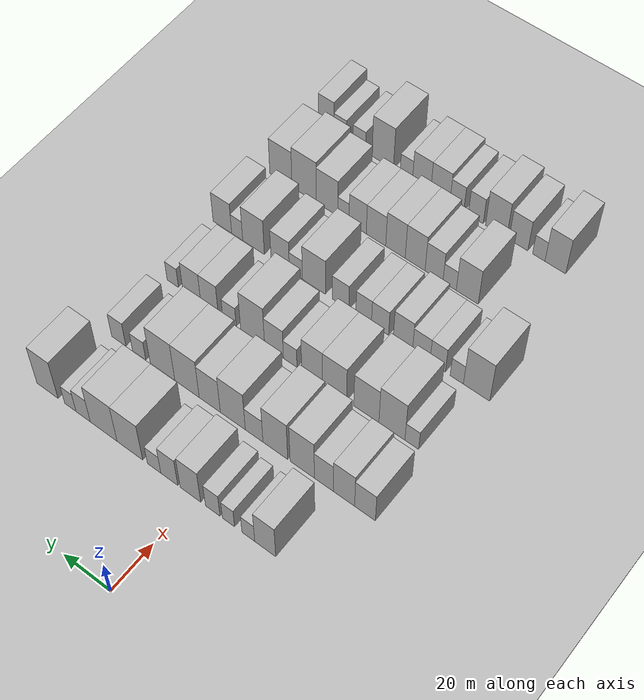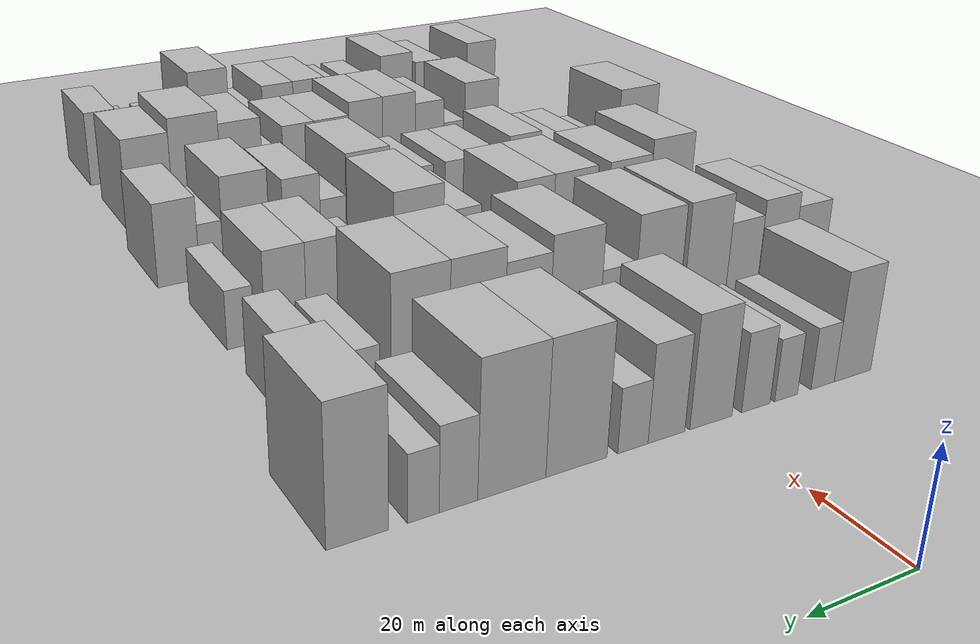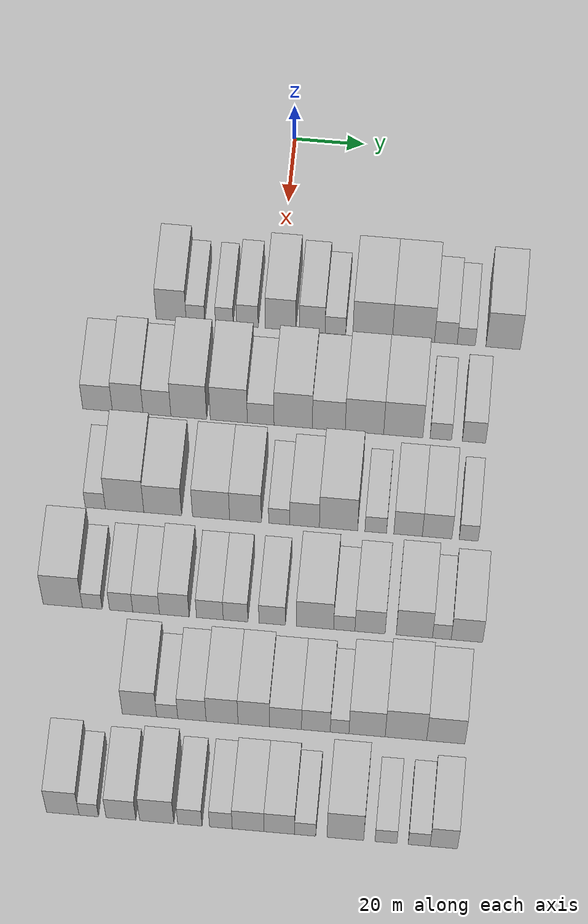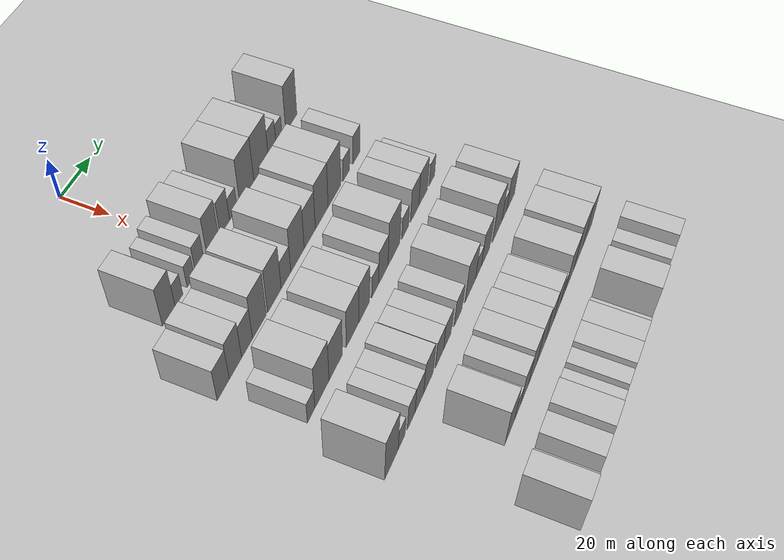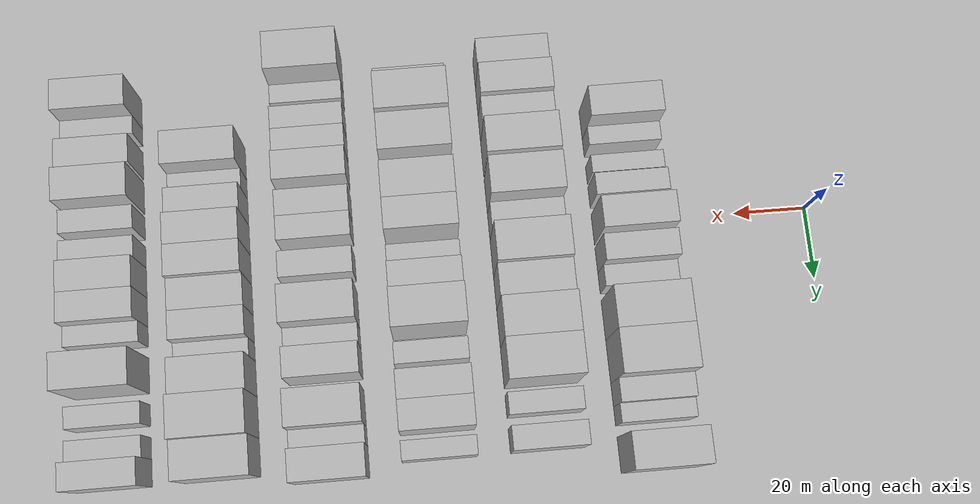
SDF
<sdf version="1.6">
 <world name="default">
  <include><name>ground_plane_1</name><uri>model://HANNAS_ground_plane</uri></include>
  <include>
   <name>ground_plane_2</name>
   <uri>model://HANNAS_ground_plane</uri>
   <pose>100 0 0  0 0 0</pose>
  </include>
  <model name="building_47">
   <static>1</static>
   <pose>50.0000 -29.3634 0 0.000000 0.000000 0.000000</pose>
   <link name="link">
    <pose>0 0 10.50 0 0 0</pose>
    <collision name="collision"><geometry><box><size>20.0000 8.4571 21.0000</size></box></geometry></collision>
    <visual name="visual">
     <cast_shadows>0</cast_shadows>
     <geometry><box><size>20.0000 8.4571 21.0000</size></box></geometry>
     <material>
      <script>
       <uri>model://HANNAS_wall/materials/scripts</uri>
       <uri>model://HANNAS_wall/materials/textures</uri>
       <name>vrc/HANNAS_wall</name>
      </script>
     </material>
    </visual>
   </link>
  </model>
  <model name="building_48">
   <static>1</static>
   <pose>50.0000 -22.5120 0 0.000000 0.000000 0.000000</pose>
   <link name="link">
    <pose>0 0 6.00 0 0 0</pose>
    <collision name="collision"><geometry><box><size>20.0000 5.2457 12.0000</size></box></geometry></collision>
    <visual name="visual">
     <cast_shadows>0</cast_shadows>
     <geometry><box><size>20.0000 5.2457 12.0000</size></box></geometry>
     <material>
      <script>
       <uri>model://HANNAS_wall/materials/scripts</uri>
       <uri>model://HANNAS_wall/materials/textures</uri>
       <name>vrc/HANNAS_wall</name>
      </script>
     </material>
    </visual>
   </link>
  </model>
  <model name="building_49">
   <static>1</static>
   <pose>50.0000 -14.3957 0 0.000000 0.000000 0.000000</pose>
   <link name="link">
    <pose>0 0 6.00 0 0 0</pose>
    <collision name="collision"><geometry><box><size>20.0000 4.9868 12.0000</size></box></geometry></collision>
    <visual name="visual">
     <cast_shadows>0</cast_shadows>
     <geometry><box><size>20.0000 4.9868 12.0000</size></box></geometry>
     <material>
      <script>
       <uri>model://HANNAS_wall/materials/scripts</uri>
       <uri>model://HANNAS_wall/materials/textures</uri>
       <name>vrc/HANNAS_wall</name>
      </script>
     </material>
    </visual>
   </link>
  </model>
  <model name="building_50">
   <static>1</static>
   <pose>50.0000 -7.8755 0 0.000000 0.000000 0.000000</pose>
   <link name="link">
    <pose>0 0 7.50 0 0 0</pose>
    <collision name="collision"><geometry><box><size>20.0000 6.0535 15.0000</size></box></geometry></collision>
    <visual name="visual">
     <cast_shadows>0</cast_shadows>
     <geometry><box><size>20.0000 6.0535 15.0000</size></box></geometry>
     <material>
      <script>
       <uri>model://HANNAS_wall/materials/scripts</uri>
       <uri>model://HANNAS_wall/materials/textures</uri>
       <name>vrc/HANNAS_wall</name>
      </script>
     </material>
    </visual>
   </link>
  </model>
  <model name="building_51">
   <static>1</static>
   <pose>50.0000 1.4593 0 0.000000 0.000000 0.000000</pose>
   <link name="link">
    <pose>0 0 10.50 0 0 0</pose>
    <collision name="collision"><geometry><box><size>20.0000 8.6161 21.0000</size></box></geometry></collision>
    <visual name="visual">
     <cast_shadows>0</cast_shadows>
     <geometry><box><size>20.0000 8.6161 21.0000</size></box></geometry>
     <material>
      <script>
       <uri>model://HANNAS_wall/materials/scripts</uri>
       <uri>model://HANNAS_wall/materials/textures</uri>
       <name>vrc/HANNAS_wall</name>
      </script>
     </material>
    </visual>
   </link>
  </model>
  <model name="building_52">
   <static>1</static>
   <pose>50.0000 10.3739 0 0.000000 0.000000 0.000000</pose>
   <link name="link">
    <pose>0 0 9.00 0 0 0</pose>
    <collision name="collision"><geometry><box><size>20.0000 7.2131 18.0000</size></box></geometry></collision>
    <visual name="visual">
     <cast_shadows>0</cast_shadows>
     <geometry><box><size>20.0000 7.2131 18.0000</size></box></geometry>
     <material>
      <script>
       <uri>model://HANNAS_wall/materials/scripts</uri>
       <uri>model://HANNAS_wall/materials/textures</uri>
       <name>vrc/HANNAS_wall</name>
      </script>
     </material>
    </visual>
   </link>
  </model>
  <model name="building_53">
   <static>1</static>
   <pose>50.0000 16.8806 0 0.000000 0.000000 0.000000</pose>
   <link name="link">
    <pose>0 0 6.00 0 0 0</pose>
    <collision name="collision"><geometry><box><size>20.0000 5.8004 12.0000</size></box></geometry></collision>
    <visual name="visual">
     <cast_shadows>0</cast_shadows>
     <geometry><box><size>20.0000 5.8004 12.0000</size></box></geometry>
     <material>
      <script>
       <uri>model://HANNAS_wall/materials/scripts</uri>
       <uri>model://HANNAS_wall/materials/textures</uri>
       <name>vrc/HANNAS_wall</name>
      </script>
     </material>
    </visual>
   </link>
  </model>
  <model name="building_54">
   <static>1</static>
   <pose>50.0000 27.3509 0 0.000000 0.000000 0.000000</pose>
   <link name="link">
    <pose>0 0 12.00 0 0 0</pose>
    <collision name="collision"><geometry><box><size>20.0000 11.1402 24.0000</size></box></geometry></collision>
    <visual name="visual">
     <cast_shadows>0</cast_shadows>
     <geometry><box><size>20.0000 11.1402 24.0000</size></box></geometry>
     <material>
      <script>
       <uri>model://HANNAS_wall/materials/scripts</uri>
       <uri>model://HANNAS_wall/materials/textures</uri>
       <name>vrc/HANNAS_wall</name>
      </script>
     </material>
    </visual>
   </link>
  </model>
  <model name="building_55">
   <static>1</static>
   <pose>50.0000 38.8120 0 0.000000 0.000000 0.000000</pose>
   <link name="link">
    <pose>0 0 12.00 0 0 0</pose>
    <collision name="collision"><geometry><box><size>20.0000 11.7821 24.0000</size></box></geometry></collision>
    <visual name="visual">
     <cast_shadows>0</cast_shadows>
     <geometry><box><size>20.0000 11.7821 24.0000</size></box></geometry>
     <material>
      <script>
       <uri>model://HANNAS_wall/materials/scripts</uri>
       <uri>model://HANNAS_wall/materials/textures</uri>
       <name>vrc/HANNAS_wall</name>
      </script>
     </material>
    </visual>
   </link>
  </model>
  <model name="building_56">
   <static>1</static>
   <pose>50.0000 47.8884 0 0.000000 0.000000 0.000000</pose>
   <link name="link">
    <pose>0 0 7.50 0 0 0</pose>
    <collision name="collision"><geometry><box><size>20.0000 6.3706 15.0000</size></box></geometry></collision>
    <visual name="visual">
     <cast_shadows>0</cast_shadows>
     <geometry><box><size>20.0000 6.3706 15.0000</size></box></geometry>
     <material>
      <script>
       <uri>model://HANNAS_wall/materials/scripts</uri>
       <uri>model://HANNAS_wall/materials/textures</uri>
       <name>vrc/HANNAS_wall</name>
      </script>
     </material>
    </visual>
   </link>
  </model>
  <model name="building_57">
   <static>1</static>
   <pose>50.0000 53.6094 0 0.000000 0.000000 0.000000</pose>
   <link name="link">
    <pose>0 0 6.00 0 0 0</pose>
    <collision name="collision"><geometry><box><size>20.0000 5.0714 12.0000</size></box></geometry></collision>
    <visual name="visual">
     <cast_shadows>0</cast_shadows>
     <geometry><box><size>20.0000 5.0714 12.0000</size></box></geometry>
     <material>
      <script>
       <uri>model://HANNAS_wall/materials/scripts</uri>
       <uri>model://HANNAS_wall/materials/textures</uri>
       <name>vrc/HANNAS_wall</name>
      </script>
     </material>
    </visual>
   </link>
  </model>
  <model name="building_58">
   <static>1</static>
   <pose>50.0000 63.9544 0 0.000000 0.000000 0.000000</pose>
   <link name="link">
    <pose>0 0 12.00 0 0 0</pose>
    <collision name="collision"><geometry><box><size>20.0000 9.6186 24.0000</size></box></geometry></collision>
    <visual name="visual">
     <cast_shadows>0</cast_shadows>
     <geometry><box><size>20.0000 9.6186 24.0000</size></box></geometry>
     <material>
      <script>
       <uri>model://HANNAS_wall/materials/scripts</uri>
       <uri>model://HANNAS_wall/materials/textures</uri>
       <name>vrc/HANNAS_wall</name>
      </script>
     </material>
    </visual>
   </link>
  </model>
  <model name="building_158">
   <static>1</static>
   <pose>79.0000 -46.8886 0 0.000000 0.000000 0.000000</pose>
   <link name="link">
    <pose>0 0 9.00 0 0 0</pose>
    <collision name="collision"><geometry><box><size>20.0000 8.2872 18.0000</size></box></geometry></collision>
    <visual name="visual">
     <cast_shadows>0</cast_shadows>
     <geometry><box><size>20.0000 8.2872 18.0000</size></box></geometry>
     <material>
      <script>
       <uri>model://HANNAS_wall/materials/scripts</uri>
       <uri>model://HANNAS_wall/materials/textures</uri>
       <name>vrc/HANNAS_wall</name>
      </script>
     </material>
    </visual>
   </link>
  </model>
  <model name="building_159">
   <static>1</static>
   <pose>79.0000 -38.4567 0 0.000000 0.000000 0.000000</pose>
   <link name="link">
    <pose>0 0 10.50 0 0 0</pose>
    <collision name="collision"><geometry><box><size>20.0000 8.5767 21.0000</size></box></geometry></collision>
    <visual name="visual">
     <cast_shadows>0</cast_shadows>
     <geometry><box><size>20.0000 8.5767 21.0000</size></box></geometry>
     <material>
      <script>
       <uri>model://HANNAS_wall/materials/scripts</uri>
       <uri>model://HANNAS_wall/materials/textures</uri>
       <name>vrc/HANNAS_wall</name>
      </script>
     </material>
    </visual>
   </link>
  </model>
  <model name="building_160">
   <static>1</static>
   <pose>79.0000 -30.2871 0 0.000000 0.000000 0.000000</pose>
   <link name="link">
    <pose>0 0 9.00 0 0 0</pose>
    <collision name="collision"><geometry><box><size>20.0000 7.7624 18.0000</size></box></geometry></collision>
    <visual name="visual">
     <cast_shadows>0</cast_shadows>
     <geometry><box><size>20.0000 7.7624 18.0000</size></box></geometry>
     <material>
      <script>
       <uri>model://HANNAS_wall/materials/scripts</uri>
       <uri>model://HANNAS_wall/materials/textures</uri>
       <name>vrc/HANNAS_wall</name>
      </script>
     </material>
    </visual>
   </link>
  </model>
  <model name="building_161">
   <static>1</static>
   <pose>79.0000 -21.4184 0 0.000000 0.000000 0.000000</pose>
   <link name="link">
    <pose>0 0 12.00 0 0 0</pose>
    <collision name="collision"><geometry><box><size>20.0000 9.9750 24.0000</size></box></geometry></collision>
    <visual name="visual">
     <cast_shadows>0</cast_shadows>
     <geometry><box><size>20.0000 9.9750 24.0000</size></box></geometry>
     <material>
      <script>
       <uri>model://HANNAS_wall/materials/scripts</uri>
       <uri>model://HANNAS_wall/materials/textures</uri>
       <name>vrc/HANNAS_wall</name>
      </script>
     </material>
    </visual>
   </link>
  </model>
  <model name="building_162">
   <static>1</static>
   <pose>79.0000 -10.2689 0 0.000000 0.000000 0.000000</pose>
   <link name="link">
    <pose>0 0 12.00 0 0 0</pose>
    <collision name="collision"><geometry><box><size>20.0000 10.3240 24.0000</size></box></geometry></collision>
    <visual name="visual">
     <cast_shadows>0</cast_shadows>
     <geometry><box><size>20.0000 10.3240 24.0000</size></box></geometry>
     <material>
      <script>
       <uri>model://HANNAS_wall/materials/scripts</uri>
       <uri>model://HANNAS_wall/materials/textures</uri>
       <name>vrc/HANNAS_wall</name>
      </script>
     </material>
    </visual>
   </link>
  </model>
  <model name="building_163">
   <static>1</static>
   <pose>79.0000 -1.3924 0 0.000000 0.000000 0.000000</pose>
   <link name="link">
    <pose>0 0 7.50 0 0 0</pose>
    <collision name="collision"><geometry><box><size>20.0000 7.4290 15.0000</size></box></geometry></collision>
    <visual name="visual">
     <cast_shadows>0</cast_shadows>
     <geometry><box><size>20.0000 7.4290 15.0000</size></box></geometry>
     <material>
      <script>
       <uri>model://HANNAS_wall/materials/scripts</uri>
       <uri>model://HANNAS_wall/materials/textures</uri>
       <name>vrc/HANNAS_wall</name>
      </script>
     </material>
    </visual>
   </link>
  </model>
  <model name="building_164">
   <static>1</static>
   <pose>79.0000 7.6550 0 0.000000 0.000000 0.000000</pose>
   <link name="link">
    <pose>0 0 12.00 0 0 0</pose>
    <collision name="collision"><geometry><box><size>20.0000 10.6658 24.0000</size></box></geometry></collision>
    <visual name="visual">
     <cast_shadows>0</cast_shadows>
     <geometry><box><size>20.0000 10.6658 24.0000</size></box></geometry>
     <material>
      <script>
       <uri>model://HANNAS_wall/materials/scripts</uri>
       <uri>model://HANNAS_wall/materials/textures</uri>
       <name>vrc/HANNAS_wall</name>
      </script>
     </material>
    </visual>
   </link>
  </model>
  <model name="building_165">
   <static>1</static>
   <pose>79.0000 17.5575 0 0.000000 0.000000 0.000000</pose>
   <link name="link">
    <pose>0 0 10.50 0 0 0</pose>
    <collision name="collision"><geometry><box><size>20.0000 9.1391 21.0000</size></box></geometry></collision>
    <visual name="visual">
     <cast_shadows>0</cast_shadows>
     <geometry><box><size>20.0000 9.1391 21.0000</size></box></geometry>
     <material>
      <script>
       <uri>model://HANNAS_wall/materials/scripts</uri>
       <uri>model://HANNAS_wall/materials/textures</uri>
       <name>vrc/HANNAS_wall</name>
      </script>
     </material>
    </visual>
   </link>
  </model>
  <model name="building_166">
   <static>1</static>
   <pose>79.0000 27.4711 0 0.000000 0.000000 0.000000</pose>
   <link name="link">
    <pose>0 0 12.00 0 0 0</pose>
    <collision name="collision"><geometry><box><size>20.0000 10.6882 24.0000</size></box></geometry></collision>
    <visual name="visual">
     <cast_shadows>0</cast_shadows>
     <geometry><box><size>20.0000 10.6882 24.0000</size></box></geometry>
     <material>
      <script>
       <uri>model://HANNAS_wall/materials/scripts</uri>
       <uri>model://HANNAS_wall/materials/textures</uri>
       <name>vrc/HANNAS_wall</name>
      </script>
     </material>
    </visual>
   </link>
  </model>
  <model name="building_167">
   <static>1</static>
   <pose>79.0000 38.2589 0 0.000000 0.000000 0.000000</pose>
   <link name="link">
    <pose>0 0 12.00 0 0 0</pose>
    <collision name="collision"><geometry><box><size>20.0000 10.8874 24.0000</size></box></geometry></collision>
    <visual name="visual">
     <cast_shadows>0</cast_shadows>
     <geometry><box><size>20.0000 10.8874 24.0000</size></box></geometry>
     <material>
      <script>
       <uri>model://HANNAS_wall/materials/scripts</uri>
       <uri>model://HANNAS_wall/materials/textures</uri>
       <name>vrc/HANNAS_wall</name>
      </script>
     </material>
    </visual>
   </link>
  </model>
  <model name="building_168">
   <static>1</static>
   <pose>79.0000 48.6818 0 0.000000 0.000000 0.000000</pose>
   <link name="link">
    <pose>0 0 6.00 0 0 0</pose>
    <collision name="collision"><geometry><box><size>20.0000 5.9584 12.0000</size></box></geometry></collision>
    <visual name="visual">
     <cast_shadows>0</cast_shadows>
     <geometry><box><size>20.0000 5.9584 12.0000</size></box></geometry>
     <material>
      <script>
       <uri>model://HANNAS_wall/materials/scripts</uri>
       <uri>model://HANNAS_wall/materials/textures</uri>
       <name>vrc/HANNAS_wall</name>
      </script>
     </material>
    </visual>
   </link>
  </model>
  <model name="building_169">
   <static>1</static>
   <pose>79.0000 57.8882 0 0.000000 0.000000 0.000000</pose>
   <link name="link">
    <pose>0 0 7.50 0 0 0</pose>
    <collision name="collision"><geometry><box><size>20.0000 6.4545 15.0000</size></box></geometry></collision>
    <visual name="visual">
     <cast_shadows>0</cast_shadows>
     <geometry><box><size>20.0000 6.4545 15.0000</size></box></geometry>
     <material>
      <script>
       <uri>model://HANNAS_wall/materials/scripts</uri>
       <uri>model://HANNAS_wall/materials/textures</uri>
       <name>vrc/HANNAS_wall</name>
      </script>
     </material>
    </visual>
   </link>
  </model>
  <model name="building_274">
   <static>1</static>
   <pose>108.0000 -44.2606 0 0.000000 0.000000 0.000000</pose>
   <link name="link">
    <pose>0 0 6.00 0 0 0</pose>
    <collision name="collision"><geometry><box><size>20.0000 5.5632 12.0000</size></box></geometry></collision>
    <visual name="visual">
     <cast_shadows>0</cast_shadows>
     <geometry><box><size>20.0000 5.5632 12.0000</size></box></geometry>
     <material>
      <script>
       <uri>model://HANNAS_wall/materials/scripts</uri>
       <uri>model://HANNAS_wall/materials/textures</uri>
       <name>vrc/HANNAS_wall</name>
      </script>
     </material>
    </visual>
   </link>
  </model>
  <model name="building_275">
   <static>1</static>
   <pose>108.0000 -36.1651 0 0.000000 0.000000 0.000000</pose>
   <link name="link">
    <pose>0 0 12.00 0 0 0</pose>
    <collision name="collision"><geometry><box><size>20.0000 10.6278 24.0000</size></box></geometry></collision>
    <visual name="visual">
     <cast_shadows>0</cast_shadows>
     <geometry><box><size>20.0000 10.6278 24.0000</size></box></geometry>
     <material>
      <script>
       <uri>model://HANNAS_wall/materials/scripts</uri>
       <uri>model://HANNAS_wall/materials/textures</uri>
       <name>vrc/HANNAS_wall</name>
      </script>
     </material>
    </visual>
   </link>
  </model>
  <model name="building_276">
   <static>1</static>
   <pose>108.0000 -25.6418 0 0.000000 0.000000 0.000000</pose>
   <link name="link">
    <pose>0 0 10.50 0 0 0</pose>
    <collision name="collision"><geometry><box><size>20.0000 10.4188 21.0000</size></box></geometry></collision>
    <visual name="visual">
     <cast_shadows>0</cast_shadows>
     <geometry><box><size>20.0000 10.4188 21.0000</size></box></geometry>
     <material>
      <script>
       <uri>model://HANNAS_wall/materials/scripts</uri>
       <uri>model://HANNAS_wall/materials/textures</uri>
       <name>vrc/HANNAS_wall</name>
      </script>
     </material>
    </visual>
   </link>
  </model>
  <model name="building_277">
   <static>1</static>
   <pose>108.0000 -12.3194 0 0.000000 0.000000 0.000000</pose>
   <link name="link">
    <pose>0 0 10.50 0 0 0</pose>
    <collision name="collision"><geometry><box><size>20.0000 10.2261 21.0000</size></box></geometry></collision>
    <visual name="visual">
     <cast_shadows>0</cast_shadows>
     <geometry><box><size>20.0000 10.2261 21.0000</size></box></geometry>
     <material>
      <script>
       <uri>model://HANNAS_wall/materials/scripts</uri>
       <uri>model://HANNAS_wall/materials/textures</uri>
       <name>vrc/HANNAS_wall</name>
      </script>
     </material>
    </visual>
   </link>
  </model>
  <model name="building_278">
   <static>1</static>
   <pose>108.0000 -2.8326 0 0.000000 0.000000 0.000000</pose>
   <link name="link">
    <pose>0 0 10.50 0 0 0</pose>
    <collision name="collision"><geometry><box><size>20.0000 8.7475 21.0000</size></box></geometry></collision>
    <visual name="visual">
     <cast_shadows>0</cast_shadows>
     <geometry><box><size>20.0000 8.7475 21.0000</size></box></geometry>
     <material>
      <script>
       <uri>model://HANNAS_wall/materials/scripts</uri>
       <uri>model://HANNAS_wall/materials/textures</uri>
       <name>vrc/HANNAS_wall</name>
      </script>
     </material>
    </visual>
   </link>
  </model>
  <model name="building_279">
   <static>1</static>
   <pose>108.0000 6.4587 0 0.000000 0.000000 0.000000</pose>
   <link name="link">
    <pose>0 0 6.00 0 0 0</pose>
    <collision name="collision"><geometry><box><size>20.0000 5.8352 12.0000</size></box></geometry></collision>
    <visual name="visual">
     <cast_shadows>0</cast_shadows>
     <geometry><box><size>20.0000 5.8352 12.0000</size></box></geometry>
     <material>
      <script>
       <uri>model://HANNAS_wall/materials/scripts</uri>
       <uri>model://HANNAS_wall/materials/textures</uri>
       <name>vrc/HANNAS_wall</name>
      </script>
     </material>
    </visual>
   </link>
  </model>
  <model name="building_280">
   <static>1</static>
   <pose>108.0000 13.4457 0 0.000000 0.000000 0.000000</pose>
   <link name="link">
    <pose>0 0 9.00 0 0 0</pose>
    <collision name="collision"><geometry><box><size>20.0000 8.1387 18.0000</size></box></geometry></collision>
    <visual name="visual">
     <cast_shadows>0</cast_shadows>
     <geometry><box><size>20.0000 8.1387 18.0000</size></box></geometry>
     <material>
      <script>
       <uri>model://HANNAS_wall/materials/scripts</uri>
       <uri>model://HANNAS_wall/materials/textures</uri>
       <name>vrc/HANNAS_wall</name>
      </script>
     </material>
    </visual>
   </link>
  </model>
  <model name="building_281">
   <static>1</static>
   <pose>108.0000 22.7704 0 0.000000 0.000000 0.000000</pose>
   <link name="link">
    <pose>0 0 12.00 0 0 0</pose>
    <collision name="collision"><geometry><box><size>20.0000 10.5108 24.0000</size></box></geometry></collision>
    <visual name="visual">
     <cast_shadows>0</cast_shadows>
     <geometry><box><size>20.0000 10.5108 24.0000</size></box></geometry>
     <material>
      <script>
       <uri>model://HANNAS_wall/materials/scripts</uri>
       <uri>model://HANNAS_wall/materials/textures</uri>
       <name>vrc/HANNAS_wall</name>
      </script>
     </material>
    </visual>
   </link>
  </model>
  <model name="building_282">
   <static>1</static>
   <pose>108.0000 33.0000 0 0.000000 0.000000 0.000000</pose>
   <link name="link">
    <pose>0 0 6.00 0 0 0</pose>
    <collision name="collision"><geometry><box><size>20.0000 5.9485 12.0000</size></box></geometry></collision>
    <visual name="visual">
     <cast_shadows>0</cast_shadows>
     <geometry><box><size>20.0000 5.9485 12.0000</size></box></geometry>
     <material>
      <script>
       <uri>model://HANNAS_wall/materials/scripts</uri>
       <uri>model://HANNAS_wall/materials/textures</uri>
       <name>vrc/HANNAS_wall</name>
      </script>
     </material>
    </visual>
   </link>
  </model>
  <model name="building_283">
   <static>1</static>
   <pose>108.0000 41.8937 0 0.000000 0.000000 0.000000</pose>
   <link name="link">
    <pose>0 0 9.00 0 0 0</pose>
    <collision name="collision"><geometry><box><size>20.0000 7.8387 18.0000</size></box></geometry></collision>
    <visual name="visual">
     <cast_shadows>0</cast_shadows>
     <geometry><box><size>20.0000 7.8387 18.0000</size></box></geometry>
     <material>
      <script>
       <uri>model://HANNAS_wall/materials/scripts</uri>
       <uri>model://HANNAS_wall/materials/textures</uri>
       <name>vrc/HANNAS_wall</name>
      </script>
     </material>
    </visual>
   </link>
  </model>
  <model name="building_284">
   <static>1</static>
   <pose>108.0000 49.8724 0 0.000000 0.000000 0.000000</pose>
   <link name="link">
    <pose>0 0 9.00 0 0 0</pose>
    <collision name="collision"><geometry><box><size>20.0000 8.1189 18.0000</size></box></geometry></collision>
    <visual name="visual">
     <cast_shadows>0</cast_shadows>
     <geometry><box><size>20.0000 8.1189 18.0000</size></box></geometry>
     <material>
      <script>
       <uri>model://HANNAS_wall/materials/scripts</uri>
       <uri>model://HANNAS_wall/materials/textures</uri>
       <name>vrc/HANNAS_wall</name>
      </script>
     </material>
    </visual>
   </link>
  </model>
  <model name="building_285">
   <static>1</static>
   <pose>108.0000 58.5403 0 0.000000 0.000000 0.000000</pose>
   <link name="link">
    <pose>0 0 6.00 0 0 0</pose>
    <collision name="collision"><geometry><box><size>20.0000 5.2169 12.0000</size></box></geometry></collision>
    <visual name="visual">
     <cast_shadows>0</cast_shadows>
     <geometry><box><size>20.0000 5.2169 12.0000</size></box></geometry>
     <material>
      <script>
       <uri>model://HANNAS_wall/materials/scripts</uri>
       <uri>model://HANNAS_wall/materials/textures</uri>
       <name>vrc/HANNAS_wall</name>
      </script>
     </material>
    </visual>
   </link>
  </model>
  <model name="building_385">
   <static>1</static>
   <pose>137.0000 -49.8945 0 0.000000 0.000000 0.000000</pose>
   <link name="link">
    <pose>0 0 12.00 0 0 0</pose>
    <collision name="collision"><geometry><box><size>20.0000 10.6851 24.0000</size></box></geometry></collision>
    <visual name="visual">
     <cast_shadows>0</cast_shadows>
     <geometry><box><size>20.0000 10.6851 24.0000</size></box></geometry>
     <material>
      <script>
       <uri>model://HANNAS_wall/materials/scripts</uri>
       <uri>model://HANNAS_wall/materials/textures</uri>
       <name>vrc/HANNAS_wall</name>
      </script>
     </material>
    </visual>
   </link>
  </model>
  <model name="building_386">
   <static>1</static>
   <pose>137.0000 -41.8334 0 0.000000 0.000000 0.000000</pose>
   <link name="link">
    <pose>0 0 6.00 0 0 0</pose>
    <collision name="collision"><geometry><box><size>20.0000 5.4369 12.0000</size></box></geometry></collision>
    <visual name="visual">
     <cast_shadows>0</cast_shadows>
     <geometry><box><size>20.0000 5.4369 12.0000</size></box></geometry>
     <material>
      <script>
       <uri>model://HANNAS_wall/materials/scripts</uri>
       <uri>model://HANNAS_wall/materials/textures</uri>
       <name>vrc/HANNAS_wall</name>
      </script>
     </material>
    </visual>
   </link>
  </model>
  <model name="building_387">
   <static>1</static>
   <pose>137.0000 -33.9406 0 0.000000 0.000000 0.000000</pose>
   <link name="link">
    <pose>0 0 7.50 0 0 0</pose>
    <collision name="collision"><geometry><box><size>20.0000 6.3488 15.0000</size></box></geometry></collision>
    <visual name="visual">
     <cast_shadows>0</cast_shadows>
     <geometry><box><size>20.0000 6.3488 15.0000</size></box></geometry>
     <material>
      <script>
       <uri>model://HANNAS_wall/materials/scripts</uri>
       <uri>model://HANNAS_wall/materials/textures</uri>
       <name>vrc/HANNAS_wall</name>
      </script>
     </material>
    </visual>
   </link>
  </model>
  <model name="building_388">
   <static>1</static>
   <pose>137.0000 -27.1272 0 0.000000 0.000000 0.000000</pose>
   <link name="link">
    <pose>0 0 7.50 0 0 0</pose>
    <collision name="collision"><geometry><box><size>20.0000 7.2780 15.0000</size></box></geometry></collision>
    <visual name="visual">
     <cast_shadows>0</cast_shadows>
     <geometry><box><size>20.0000 7.2780 15.0000</size></box></geometry>
     <material>
      <script>
       <uri>model://HANNAS_wall/materials/scripts</uri>
       <uri>model://HANNAS_wall/materials/textures</uri>
       <name>vrc/HANNAS_wall</name>
      </script>
     </material>
    </visual>
   </link>
  </model>
  <model name="building_389">
   <static>1</static>
   <pose>137.0000 -19.4342 0 0.000000 0.000000 0.000000</pose>
   <link name="link">
    <pose>0 0 9.00 0 0 0</pose>
    <collision name="collision"><geometry><box><size>20.0000 8.1078 18.0000</size></box></geometry></collision>
    <visual name="visual">
     <cast_shadows>0</cast_shadows>
     <geometry><box><size>20.0000 8.1078 18.0000</size></box></geometry>
     <material>
      <script>
       <uri>model://HANNAS_wall/materials/scripts</uri>
       <uri>model://HANNAS_wall/materials/textures</uri>
       <name>vrc/HANNAS_wall</name>
      </script>
     </material>
    </visual>
   </link>
  </model>
  <model name="building_390">
   <static>1</static>
   <pose>137.0000 -9.7411 0 0.000000 0.000000 0.000000</pose>
   <link name="link">
    <pose>0 0 7.50 0 0 0</pose>
    <collision name="collision"><geometry><box><size>20.0000 7.2785 15.0000</size></box></geometry></collision>
    <visual name="visual">
     <cast_shadows>0</cast_shadows>
     <geometry><box><size>20.0000 7.2785 15.0000</size></box></geometry>
     <material>
      <script>
       <uri>model://HANNAS_wall/materials/scripts</uri>
       <uri>model://HANNAS_wall/materials/textures</uri>
       <name>vrc/HANNAS_wall</name>
      </script>
     </material>
    </visual>
   </link>
  </model>
  <model name="building_391">
   <static>1</static>
   <pose>137.0000 -2.7389 0 0.000000 0.000000 0.000000</pose>
   <link name="link">
    <pose>0 0 7.50 0 0 0</pose>
    <collision name="collision"><geometry><box><size>20.0000 6.7258 15.0000</size></box></geometry></collision>
    <visual name="visual">
     <cast_shadows>0</cast_shadows>
     <geometry><box><size>20.0000 6.7258 15.0000</size></box></geometry>
     <material>
      <script>
       <uri>model://HANNAS_wall/materials/scripts</uri>
       <uri>model://HANNAS_wall/materials/textures</uri>
       <name>vrc/HANNAS_wall</name>
      </script>
     </material>
    </visual>
   </link>
  </model>
  <model name="building_392">
   <static>1</static>
   <pose>137.0000 7.2228 0 0.000000 0.000000 0.000000</pose>
   <link name="link">
    <pose>0 0 7.50 0 0 0</pose>
    <collision name="collision"><geometry><box><size>20.0000 7.1977 15.0000</size></box></geometry></collision>
    <visual name="visual">
     <cast_shadows>0</cast_shadows>
     <geometry><box><size>20.0000 7.1977 15.0000</size></box></geometry>
     <material>
      <script>
       <uri>model://HANNAS_wall/materials/scripts</uri>
       <uri>model://HANNAS_wall/materials/textures</uri>
       <name>vrc/HANNAS_wall</name>
      </script>
     </material>
    </visual>
   </link>
  </model>
  <model name="building_393">
   <static>1</static>
   <pose>137.0000 18.8920 0 0.000000 0.000000 0.000000</pose>
   <link name="link">
    <pose>0 0 10.50 0 0 0</pose>
    <collision name="collision"><geometry><box><size>20.0000 10.1407 21.0000</size></box></geometry></collision>
    <visual name="visual">
     <cast_shadows>0</cast_shadows>
     <geometry><box><size>20.0000 10.1407 21.0000</size></box></geometry>
     <material>
      <script>
       <uri>model://HANNAS_wall/materials/scripts</uri>
       <uri>model://HANNAS_wall/materials/textures</uri>
       <name>vrc/HANNAS_wall</name>
      </script>
     </material>
    </visual>
   </link>
  </model>
  <model name="building_394">
   <static>1</static>
   <pose>137.0000 26.8581 0 0.000000 0.000000 0.000000</pose>
   <link name="link">
    <pose>0 0 6.00 0 0 0</pose>
    <collision name="collision"><geometry><box><size>20.0000 5.7915 12.0000</size></box></geometry></collision>
    <visual name="visual">
     <cast_shadows>0</cast_shadows>
     <geometry><box><size>20.0000 5.7915 12.0000</size></box></geometry>
     <material>
      <script>
       <uri>model://HANNAS_wall/materials/scripts</uri>
       <uri>model://HANNAS_wall/materials/textures</uri>
       <name>vrc/HANNAS_wall</name>
      </script>
     </material>
    </visual>
   </link>
  </model>
  <model name="building_395">
   <static>1</static>
   <pose>137.0000 33.8562 0 0.000000 0.000000 0.000000</pose>
   <link name="link">
    <pose>0 0 9.00 0 0 0</pose>
    <collision name="collision"><geometry><box><size>20.0000 8.2047 18.0000</size></box></geometry></collision>
    <visual name="visual">
     <cast_shadows>0</cast_shadows>
     <geometry><box><size>20.0000 8.2047 18.0000</size></box></geometry>
     <material>
      <script>
       <uri>model://HANNAS_wall/materials/scripts</uri>
       <uri>model://HANNAS_wall/materials/textures</uri>
       <name>vrc/HANNAS_wall</name>
      </script>
     </material>
    </visual>
   </link>
  </model>
  <model name="building_396">
   <static>1</static>
   <pose>137.0000 45.8876 0 0.000000 0.000000 0.000000</pose>
   <link name="link">
    <pose>0 0 10.50 0 0 0</pose>
    <collision name="collision"><geometry><box><size>20.0000 9.8580 21.0000</size></box></geometry></collision>
    <visual name="visual">
     <cast_shadows>0</cast_shadows>
     <geometry><box><size>20.0000 9.8580 21.0000</size></box></geometry>
     <material>
      <script>
       <uri>model://HANNAS_wall/materials/scripts</uri>
       <uri>model://HANNAS_wall/materials/textures</uri>
       <name>vrc/HANNAS_wall</name>
      </script>
     </material>
    </visual>
   </link>
  </model>
  <model name="building_397">
   <static>1</static>
   <pose>137.0000 53.3528 0 0.000000 0.000000 0.000000</pose>
   <link name="link">
    <pose>0 0 6.00 0 0 0</pose>
    <collision name="collision"><geometry><box><size>20.0000 5.0725 12.0000</size></box></geometry></collision>
    <visual name="visual">
     <cast_shadows>0</cast_shadows>
     <geometry><box><size>20.0000 5.0725 12.0000</size></box></geometry>
     <material>
      <script>
       <uri>model://HANNAS_wall/materials/scripts</uri>
       <uri>model://HANNAS_wall/materials/textures</uri>
       <name>vrc/HANNAS_wall</name>
      </script>
     </material>
    </visual>
   </link>
  </model>
  <model name="building_398">
   <static>1</static>
   <pose>137.0000 60.1603 0 0.000000 0.000000 0.000000</pose>
   <link name="link">
    <pose>0 0 9.00 0 0 0</pose>
    <collision name="collision"><geometry><box><size>20.0000 8.5424 18.0000</size></box></geometry></collision>
    <visual name="visual">
     <cast_shadows>0</cast_shadows>
     <geometry><box><size>20.0000 8.5424 18.0000</size></box></geometry>
     <material>
      <script>
       <uri>model://HANNAS_wall/materials/scripts</uri>
       <uri>model://HANNAS_wall/materials/textures</uri>
       <name>vrc/HANNAS_wall</name>
      </script>
     </material>
    </visual>
   </link>
  </model>
  <model name="building_496">
   <static>1</static>
   <pose>166.0000 -25.8155 0 0.000000 0.000000 0.000000</pose>
   <link name="link">
    <pose>0 0 10.50 0 0 0</pose>
    <collision name="collision"><geometry><box><size>20.0000 9.2622 21.0000</size></box></geometry></collision>
    <visual name="visual">
     <cast_shadows>0</cast_shadows>
     <geometry><box><size>20.0000 9.2622 21.0000</size></box></geometry>
     <material>
      <script>
       <uri>model://HANNAS_wall/materials/scripts</uri>
       <uri>model://HANNAS_wall/materials/textures</uri>
       <name>vrc/HANNAS_wall</name>
      </script>
     </material>
    </visual>
   </link>
  </model>
  <model name="building_497">
   <static>1</static>
   <pose>166.0000 -18.3310 0 0.000000 0.000000 0.000000</pose>
   <link name="link">
    <pose>0 0 6.00 0 0 0</pose>
    <collision name="collision"><geometry><box><size>20.0000 5.7069 12.0000</size></box></geometry></collision>
    <visual name="visual">
     <cast_shadows>0</cast_shadows>
     <geometry><box><size>20.0000 5.7069 12.0000</size></box></geometry>
     <material>
      <script>
       <uri>model://HANNAS_wall/materials/scripts</uri>
       <uri>model://HANNAS_wall/materials/textures</uri>
       <name>vrc/HANNAS_wall</name>
      </script>
     </material>
    </visual>
   </link>
  </model>
  <model name="building_498">
   <static>1</static>
   <pose>166.0000 -11.6594 0 0.000000 0.000000 0.000000</pose>
   <link name="link">
    <pose>0 0 9.00 0 0 0</pose>
    <collision name="collision"><geometry><box><size>20.0000 7.6362 18.0000</size></box></geometry></collision>
    <visual name="visual">
     <cast_shadows>0</cast_shadows>
     <geometry><box><size>20.0000 7.6362 18.0000</size></box></geometry>
     <material>
      <script>
       <uri>model://HANNAS_wall/materials/scripts</uri>
       <uri>model://HANNAS_wall/materials/textures</uri>
       <name>vrc/HANNAS_wall</name>
      </script>
     </material>
    </visual>
   </link>
  </model>
  <model name="building_499">
   <static>1</static>
   <pose>166.0000 -3.5375 0 0.000000 0.000000 0.000000</pose>
   <link name="link">
    <pose>0 0 10.50 0 0 0</pose>
    <collision name="collision"><geometry><box><size>20.0000 8.6076 21.0000</size></box></geometry></collision>
    <visual name="visual">
     <cast_shadows>0</cast_shadows>
     <geometry><box><size>20.0000 8.6076 21.0000</size></box></geometry>
     <material>
      <script>
       <uri>model://HANNAS_wall/materials/scripts</uri>
       <uri>model://HANNAS_wall/materials/textures</uri>
       <name>vrc/HANNAS_wall</name>
      </script>
     </material>
    </visual>
   </link>
  </model>
  <model name="building_500">
   <static>1</static>
   <pose>166.0000 5.0260 0 0.000000 0.000000 0.000000</pose>
   <link name="link">
    <pose>0 0 10.50 0 0 0</pose>
    <collision name="collision"><geometry><box><size>20.0000 8.5195 21.0000</size></box></geometry></collision>
    <visual name="visual">
     <cast_shadows>0</cast_shadows>
     <geometry><box><size>20.0000 8.5195 21.0000</size></box></geometry>
     <material>
      <script>
       <uri>model://HANNAS_wall/materials/scripts</uri>
       <uri>model://HANNAS_wall/materials/textures</uri>
       <name>vrc/HANNAS_wall</name>
      </script>
     </material>
    </visual>
   </link>
  </model>
  <model name="building_501">
   <static>1</static>
   <pose>166.0000 13.5739 0 0.000000 0.000000 0.000000</pose>
   <link name="link">
    <pose>0 0 9.00 0 0 0</pose>
    <collision name="collision"><geometry><box><size>20.0000 8.5762 18.0000</size></box></geometry></collision>
    <visual name="visual">
     <cast_shadows>0</cast_shadows>
     <geometry><box><size>20.0000 8.5762 18.0000</size></box></geometry>
     <material>
      <script>
       <uri>model://HANNAS_wall/materials/scripts</uri>
       <uri>model://HANNAS_wall/materials/textures</uri>
       <name>vrc/HANNAS_wall</name>
      </script>
     </material>
    </visual>
   </link>
  </model>
  <model name="building_502">
   <static>1</static>
   <pose>166.0000 21.7251 0 0.000000 0.000000 0.000000</pose>
   <link name="link">
    <pose>0 0 9.00 0 0 0</pose>
    <collision name="collision"><geometry><box><size>20.0000 7.7263 18.0000</size></box></geometry></collision>
    <visual name="visual">
     <cast_shadows>0</cast_shadows>
     <geometry><box><size>20.0000 7.7263 18.0000</size></box></geometry>
     <material>
      <script>
       <uri>model://HANNAS_wall/materials/scripts</uri>
       <uri>model://HANNAS_wall/materials/textures</uri>
       <name>vrc/HANNAS_wall</name>
      </script>
     </material>
    </visual>
   </link>
  </model>
  <model name="building_503">
   <static>1</static>
   <pose>166.0000 28.0942 0 0.000000 0.000000 0.000000</pose>
   <link name="link">
    <pose>0 0 6.00 0 0 0</pose>
    <collision name="collision"><geometry><box><size>20.0000 5.0117 12.0000</size></box></geometry></collision>
    <visual name="visual">
     <cast_shadows>0</cast_shadows>
     <geometry><box><size>20.0000 5.0117 12.0000</size></box></geometry>
     <material>
      <script>
       <uri>model://HANNAS_wall/materials/scripts</uri>
       <uri>model://HANNAS_wall/materials/textures</uri>
       <name>vrc/HANNAS_wall</name>
      </script>
     </material>
    </visual>
   </link>
  </model>
  <model name="building_504">
   <static>1</static>
   <pose>166.0000 35.4698 0 0.000000 0.000000 0.000000</pose>
   <link name="link">
    <pose>0 0 10.50 0 0 0</pose>
    <collision name="collision"><geometry><box><size>20.0000 9.7395 21.0000</size></box></geometry></collision>
    <visual name="visual">
     <cast_shadows>0</cast_shadows>
     <geometry><box><size>20.0000 9.7395 21.0000</size></box></geometry>
     <material>
      <script>
       <uri>model://HANNAS_wall/materials/scripts</uri>
       <uri>model://HANNAS_wall/materials/textures</uri>
       <name>vrc/HANNAS_wall</name>
      </script>
     </material>
    </visual>
   </link>
  </model>
  <model name="building_505">
   <static>1</static>
   <pose>166.0000 45.9066 0 0.000000 0.000000 0.000000</pose>
   <link name="link">
    <pose>0 0 12.00 0 0 0</pose>
    <collision name="collision"><geometry><box><size>20.0000 11.1342 24.0000</size></box></geometry></collision>
    <visual name="visual">
     <cast_shadows>0</cast_shadows>
     <geometry><box><size>20.0000 11.1342 24.0000</size></box></geometry>
     <material>
      <script>
       <uri>model://HANNAS_wall/materials/scripts</uri>
       <uri>model://HANNAS_wall/materials/textures</uri>
       <name>vrc/HANNAS_wall</name>
      </script>
     </material>
    </visual>
   </link>
  </model>
  <model name="building_506">
   <static>1</static>
   <pose>166.0000 56.6125 0 0.000000 0.000000 0.000000</pose>
   <link name="link">
    <pose>0 0 10.50 0 0 0</pose>
    <collision name="collision"><geometry><box><size>20.0000 10.2776 21.0000</size></box></geometry></collision>
    <visual name="visual">
     <cast_shadows>0</cast_shadows>
     <geometry><box><size>20.0000 10.2776 21.0000</size></box></geometry>
     <material>
      <script>
       <uri>model://HANNAS_wall/materials/scripts</uri>
       <uri>model://HANNAS_wall/materials/textures</uri>
       <name>vrc/HANNAS_wall</name>
      </script>
     </material>
    </visual>
   </link>
  </model>
  <model name="building_604">
   <static>1</static>
   <pose>195.0000 -43.1678 0 0.000000 0.000000 0.000000</pose>
   <link name="link">
    <pose>0 0 10.50 0 0 0</pose>
    <collision name="collision"><geometry><box><size>20.0000 8.6605 21.0000</size></box></geometry></collision>
    <visual name="visual">
     <cast_shadows>0</cast_shadows>
     <geometry><box><size>20.0000 8.6605 21.0000</size></box></geometry>
     <material>
      <script>
       <uri>model://HANNAS_wall/materials/scripts</uri>
       <uri>model://HANNAS_wall/materials/textures</uri>
       <name>vrc/HANNAS_wall</name>
      </script>
     </material>
    </visual>
   </link>
  </model>
  <model name="building_605">
   <static>1</static>
   <pose>195.0000 -36.2271 0 0.000000 0.000000 0.000000</pose>
   <link name="link">
    <pose>0 0 6.00 0 0 0</pose>
    <collision name="collision"><geometry><box><size>20.0000 5.2209 12.0000</size></box></geometry></collision>
    <visual name="visual">
     <cast_shadows>0</cast_shadows>
     <geometry><box><size>20.0000 5.2209 12.0000</size></box></geometry>
     <material>
      <script>
       <uri>model://HANNAS_wall/materials/scripts</uri>
       <uri>model://HANNAS_wall/materials/textures</uri>
       <name>vrc/HANNAS_wall</name>
      </script>
     </material>
    </visual>
   </link>
  </model>
  <model name="building_606">
   <static>1</static>
   <pose>195.0000 -27.6257 0 0.000000 0.000000 0.000000</pose>
   <link name="link">
    <pose>0 0 9.00 0 0 0</pose>
    <collision name="collision"><geometry><box><size>20.0000 7.9820 18.0000</size></box></geometry></collision>
    <visual name="visual">
     <cast_shadows>0</cast_shadows>
     <geometry><box><size>20.0000 7.9820 18.0000</size></box></geometry>
     <material>
      <script>
       <uri>model://HANNAS_wall/materials/scripts</uri>
       <uri>model://HANNAS_wall/materials/textures</uri>
       <name>vrc/HANNAS_wall</name>
      </script>
     </material>
    </visual>
   </link>
  </model>
  <model name="building_607">
   <static>1</static>
   <pose>195.0000 -18.0626 0 0.000000 0.000000 0.000000</pose>
   <link name="link">
    <pose>0 0 10.50 0 0 0</pose>
    <collision name="collision"><geometry><box><size>20.0000 9.1442 21.0000</size></box></geometry></collision>
    <visual name="visual">
     <cast_shadows>0</cast_shadows>
     <geometry><box><size>20.0000 9.1442 21.0000</size></box></geometry>
     <material>
      <script>
       <uri>model://HANNAS_wall/materials/scripts</uri>
       <uri>model://HANNAS_wall/materials/textures</uri>
       <name>vrc/HANNAS_wall</name>
      </script>
     </material>
    </visual>
   </link>
  </model>
  <model name="building_608">
   <static>1</static>
   <pose>195.0000 -9.2518 0 0.000000 0.000000 0.000000</pose>
   <link name="link">
    <pose>0 0 7.50 0 0 0</pose>
    <collision name="collision"><geometry><box><size>20.0000 6.4775 15.0000</size></box></geometry></collision>
    <visual name="visual">
     <cast_shadows>0</cast_shadows>
     <geometry><box><size>20.0000 6.4775 15.0000</size></box></geometry>
     <material>
      <script>
       <uri>model://HANNAS_wall/materials/scripts</uri>
       <uri>model://HANNAS_wall/materials/textures</uri>
       <name>vrc/HANNAS_wall</name>
      </script>
     </material>
    </visual>
   </link>
  </model>
  <model name="building_609">
   <static>1</static>
   <pose>195.0000 -0.9835 0 0.000000 0.000000 0.000000</pose>
   <link name="link">
    <pose>0 0 7.50 0 0 0</pose>
    <collision name="collision"><geometry><box><size>20.0000 6.0591 15.0000</size></box></geometry></collision>
    <visual name="visual">
     <cast_shadows>0</cast_shadows>
     <geometry><box><size>20.0000 6.0591 15.0000</size></box></geometry>
     <material>
      <script>
       <uri>model://HANNAS_wall/materials/scripts</uri>
       <uri>model://HANNAS_wall/materials/textures</uri>
       <name>vrc/HANNAS_wall</name>
      </script>
     </material>
    </visual>
   </link>
  </model>
  <model name="building_610">
   <static>1</static>
   <pose>195.0000 6.2888 0 0.000000 0.000000 0.000000</pose>
   <link name="link">
    <pose>0 0 9.00 0 0 0</pose>
    <collision name="collision"><geometry><box><size>20.0000 8.4853 18.0000</size></box></geometry></collision>
    <visual name="visual">
     <cast_shadows>0</cast_shadows>
     <geometry><box><size>20.0000 8.4853 18.0000</size></box></geometry>
     <material>
      <script>
       <uri>model://HANNAS_wall/materials/scripts</uri>
       <uri>model://HANNAS_wall/materials/textures</uri>
       <name>vrc/HANNAS_wall</name>
      </script>
     </material>
    </visual>
   </link>
  </model>
  <model name="building_611">
   <static>1</static>
   <pose>195.0000 14.5949 0 0.000000 0.000000 0.000000</pose>
   <link name="link">
    <pose>0 0 9.00 0 0 0</pose>
    <collision name="collision"><geometry><box><size>20.0000 8.1269 18.0000</size></box></geometry></collision>
    <visual name="visual">
     <cast_shadows>0</cast_shadows>
     <geometry><box><size>20.0000 8.1269 18.0000</size></box></geometry>
     <material>
      <script>
       <uri>model://HANNAS_wall/materials/scripts</uri>
       <uri>model://HANNAS_wall/materials/textures</uri>
       <name>vrc/HANNAS_wall</name>
      </script>
     </material>
    </visual>
   </link>
  </model>
  <model name="building_612">
   <static>1</static>
   <pose>195.0000 21.4587 0 0.000000 0.000000 0.000000</pose>
   <link name="link">
    <pose>0 0 6.00 0 0 0</pose>
    <collision name="collision"><geometry><box><size>20.0000 5.6008 12.0000</size></box></geometry></collision>
    <visual name="visual">
     <cast_shadows>0</cast_shadows>
     <geometry><box><size>20.0000 5.6008 12.0000</size></box></geometry>
     <material>
      <script>
       <uri>model://HANNAS_wall/materials/scripts</uri>
       <uri>model://HANNAS_wall/materials/textures</uri>
       <name>vrc/HANNAS_wall</name>
      </script>
     </material>
    </visual>
   </link>
  </model>
  <model name="building_613">
   <static>1</static>
   <pose>195.0000 32.1277 0 0.000000 0.000000 0.000000</pose>
   <link name="link">
    <pose>0 0 12.00 0 0 0</pose>
    <collision name="collision"><geometry><box><size>20.0000 9.7372 24.0000</size></box></geometry></collision>
    <visual name="visual">
     <cast_shadows>0</cast_shadows>
     <geometry><box><size>20.0000 9.7372 24.0000</size></box></geometry>
     <material>
      <script>
       <uri>model://HANNAS_wall/materials/scripts</uri>
       <uri>model://HANNAS_wall/materials/textures</uri>
       <name>vrc/HANNAS_wall</name>
      </script>
     </material>
    </visual>
   </link>
  </model>
  <model name="building_614">
   <static>1</static>
   <pose>195.0000 42.9097 0 0.000000 0.000000 0.000000</pose>
   <link name="link">
    <pose>0 0 6.00 0 0 0</pose>
    <collision name="collision"><geometry><box><size>20.0000 5.8267 12.0000</size></box></geometry></collision>
    <visual name="visual">
     <cast_shadows>0</cast_shadows>
     <geometry><box><size>20.0000 5.8267 12.0000</size></box></geometry>
     <material>
      <script>
       <uri>model://HANNAS_wall/materials/scripts</uri>
       <uri>model://HANNAS_wall/materials/textures</uri>
       <name>vrc/HANNAS_wall</name>
      </script>
     </material>
    </visual>
   </link>
  </model>
  <model name="building_615">
   <static>1</static>
   <pose>195.0000 51.7213 0 0.000000 0.000000 0.000000</pose>
   <link name="link">
    <pose>0 0 6.00 0 0 0</pose>
    <collision name="collision"><geometry><box><size>20.0000 5.7965 12.0000</size></box></geometry></collision>
    <visual name="visual">
     <cast_shadows>0</cast_shadows>
     <geometry><box><size>20.0000 5.7965 12.0000</size></box></geometry>
     <material>
      <script>
       <uri>model://HANNAS_wall/materials/scripts</uri>
       <uri>model://HANNAS_wall/materials/textures</uri>
       <name>vrc/HANNAS_wall</name>
      </script>
     </material>
    </visual>
   </link>
  </model>
  <model name="building_616">
   <static>1</static>
   <pose>195.0000 58.2539 0 0.000000 0.000000 0.000000</pose>
   <link name="link">
    <pose>0 0 9.00 0 0 0</pose>
    <collision name="collision"><geometry><box><size>20.0000 7.2687 18.0000</size></box></geometry></collision>
    <visual name="visual">
     <cast_shadows>0</cast_shadows>
     <geometry><box><size>20.0000 7.2687 18.0000</size></box></geometry>
     <material>
      <script>
       <uri>model://HANNAS_wall/materials/scripts</uri>
       <uri>model://HANNAS_wall/materials/textures</uri>
       <name>vrc/HANNAS_wall</name>
      </script>
     </material>
    </visual>
   </link>
  </model>
 </world>
</sdf>
